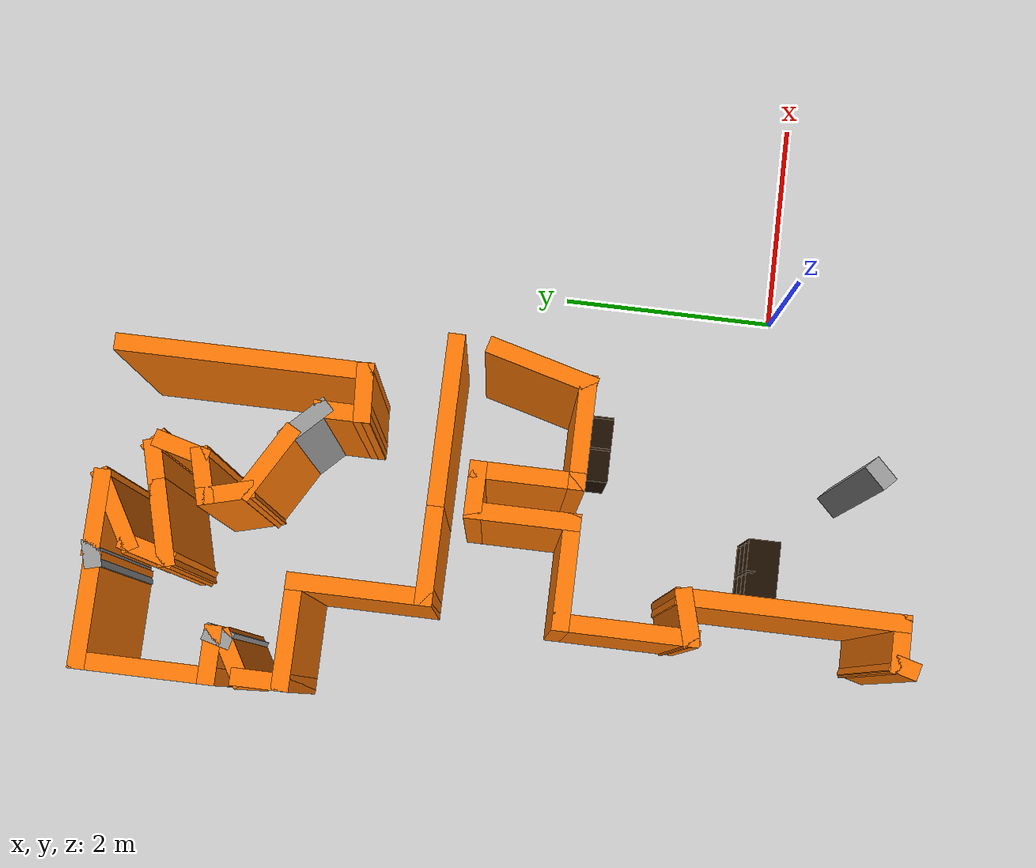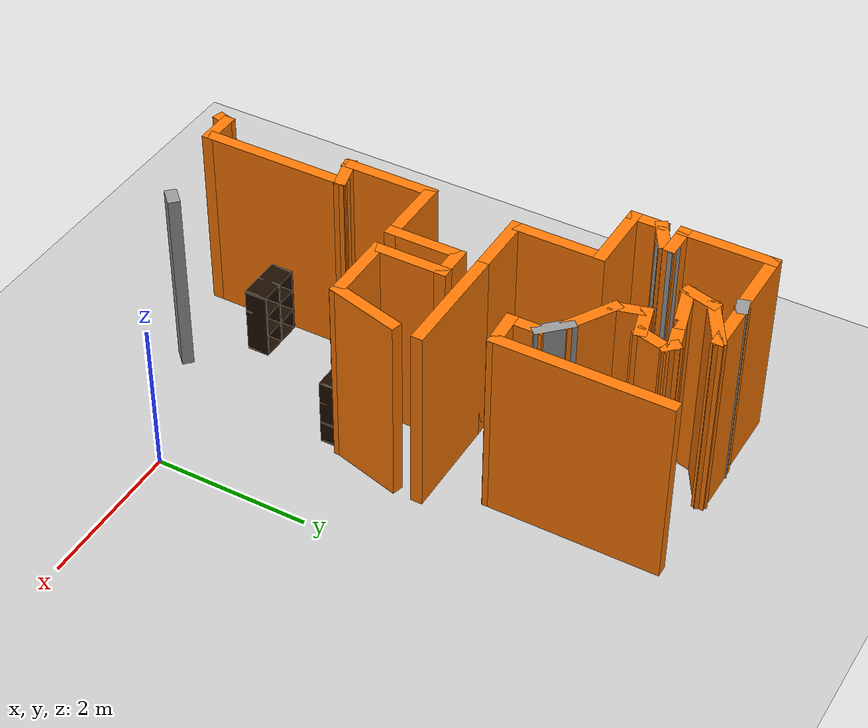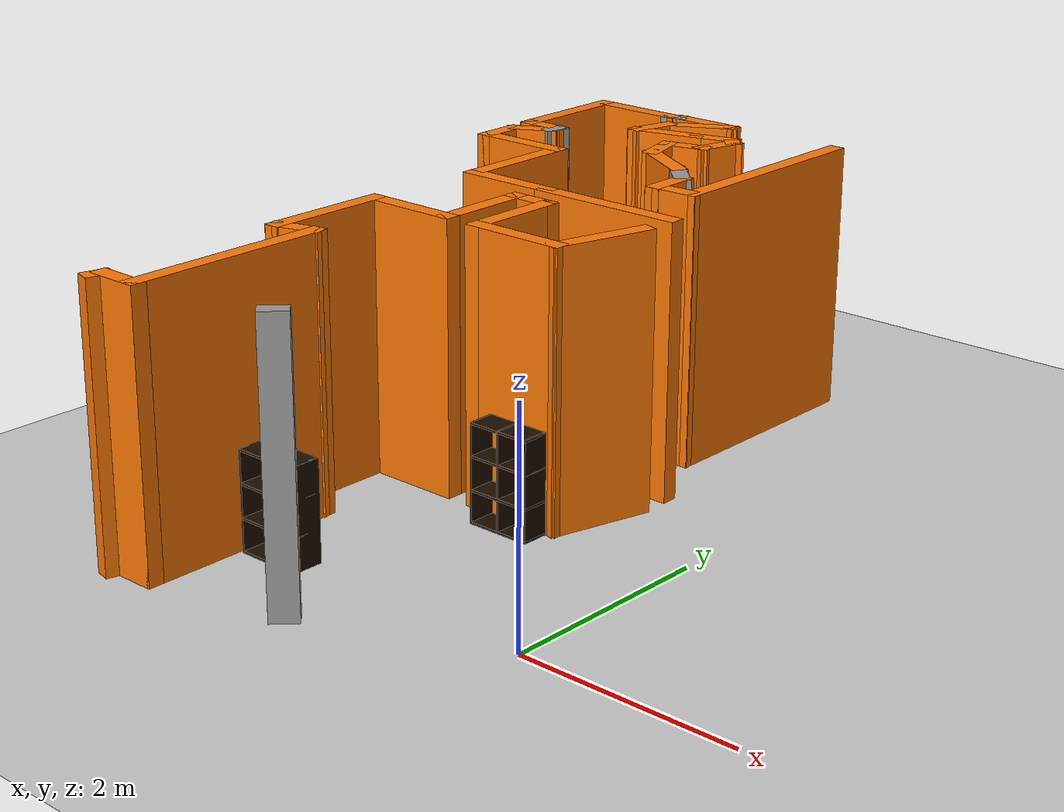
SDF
<sdf version="1.6">
 <world name="default">
  <model name="ground_plane">
   <static>1</static>
   <link name="link">
    <collision name="collision">
     <geometry><plane><normal>0 0 1</normal><size>100 100</size></plane></geometry>
     <surface>
      <contact><collide_bitmask>65535</collide_bitmask></contact>
      <friction><ode><mu>100</mu><mu2>50</mu2></ode></friction>
     </surface>
    </collision>
    <visual name="visual">
     <cast_shadows>0</cast_shadows>
     <geometry><plane><normal>0 0 1</normal><size>100 100</size></plane></geometry>
     <material>
      <script><uri>file://media/materials/scripts/gazebo.material</uri><name>Gazebo/Grey</name></script>
     </material>
    </visual>
   </link>
  </model>
  <model name="map_4">
   <pose>0.04124 -0.27835 0 0 -0 0</pose>
   <link name="Wall_0">
    <collision name="Wall_0_Collision">
     <geometry><box><size>2.25 0.15 2.5</size></box></geometry>
     <pose>0 0 1.25 0 -0 0</pose>
    </collision>
    <visual name="Wall_0_Visual">
     <pose>0 0 1.25 0 -0 0</pose>
     <geometry><box><size>2.25 0.15 2.5</size></box></geometry>
     <material>
      <script><uri>file://media/materials/scripts/gazebo.material</uri><name>Gazebo/Grey</name></script>
      <ambient>0.996078 0.47451 0.0196078 1</ambient>
     </material>
     <meta><layer>0</layer></meta>
    </visual>
    <pose>-1.38482 5.02012 0 0 -0 -1.5708</pose>
   </link>
   <link name="Wall_1">
    <collision name="Wall_1_Collision">
     <geometry><box><size>0.523847 0.15 2.5</size></box></geometry>
     <pose>0 0 1.25 0 -0 0</pose>
    </collision>
    <visual name="Wall_1_Visual">
     <pose>0 0 1.25 0 -0 0</pose>
     <geometry><box><size>0.523847 0.15 2.5</size></box></geometry>
     <material>
      <script><uri>file://media/materials/scripts/gazebo.material</uri><name>Gazebo/Grey</name></script>
      <ambient>0.996078 0.47451 0.0196078 1</ambient>
     </material>
     <meta><layer>0</layer></meta>
    </visual>
    <pose>-1.57139 3.95855 0 0 -0 -3.07968</pose>
   </link>
   <link name="Wall_12">
    <collision name="Wall_12_Collision">
     <geometry><box><size>0.75 0.15 2.5</size></box></geometry>
     <pose>0 0 1.25 0 -0 0</pose>
    </collision>
    <visual name="Wall_12_Visual">
     <pose>0 0 1.25 0 -0 0</pose>
     <geometry><box><size>0.75 0.15 2.5</size></box></geometry>
     <material>
      <script><uri>file://media/materials/scripts/gazebo.material</uri><name>Gazebo/Grey</name></script>
      <ambient>0.996078 0.47451 0.0196078 1</ambient>
     </material>
     <meta><layer>0</layer></meta>
    </visual>
    <pose>-2.88554 5.51369 0 0 -0 -2.87979</pose>
   </link>
   <link name="Wall_13">
    <collision name="Wall_13_Collision">
     <geometry><box><size>0.5 0.15 2.5</size></box></geometry>
     <pose>0 0 1.25 0 -0 0</pose>
    </collision>
    <visual name="Wall_13_Visual">
     <pose>0 0 1.25 0 -0 0</pose>
     <geometry><box><size>0.5 0.15 2.5</size></box></geometry>
     <material>
      <script><uri>file://media/materials/scripts/gazebo.material</uri><name>Gazebo/Grey</name></script>
      <ambient>0.996078 0.47451 0.0196078 1</ambient>
     </material>
     <meta><layer>0</layer></meta>
    </visual>
    <pose>-3.13003 5.60508 0 0 -0 1.309</pose>
   </link>
   <link name="Wall_14">
    <collision name="Wall_14_Collision">
     <geometry><box><size>0.75 0.15 2.5</size></box></geometry>
     <pose>0 0 1.25 0 -0 0</pose>
    </collision>
    <visual name="Wall_14_Visual">
     <pose>0 0 1.25 0 -0 0</pose>
     <geometry><box><size>0.75 0.15 2.5</size></box></geometry>
     <material>
      <script><uri>file://media/materials/scripts/gazebo.material</uri><name>Gazebo/Grey</name></script>
      <ambient>0.996078 0.47451 0.0196078 1</ambient>
     </material>
     <meta><layer>0</layer></meta>
    </visual>
    <pose>-2.82493 5.92412 0 0 -0 0.523599</pose>
   </link>
   <link name="Wall_15">
    <collision name="Wall_15_Collision">
     <geometry><box><size>0.75 0.15 2.5</size></box></geometry>
     <pose>0 0 1.25 0 -0 0</pose>
    </collision>
    <visual name="Wall_15_Visual">
     <pose>0 0 1.25 0 -0 0</pose>
     <geometry><box><size>0.75 0.15 2.5</size></box></geometry>
     <material>
      <script><uri>file://media/materials/scripts/gazebo.material</uri><name>Gazebo/Grey</name></script>
      <ambient>0.996078 0.47451 0.0196078 1</ambient>
     </material>
     <meta><layer>0</layer></meta>
    </visual>
    <pose>-2.86512 6.07412 0 0 -0 3.14159</pose>
   </link>
   <link name="Wall_16">
    <collision name="Wall_16_Collision">
     <geometry><box><size>0.25 0.15 2.5</size></box></geometry>
     <pose>0 0 1.25 0 -0 0</pose>
    </collision>
    <visual name="Wall_16_Visual">
     <pose>0 0 1.25 0 -0 0</pose>
     <geometry><box><size>0.25 0.15 2.5</size></box></geometry>
     <material>
      <script><uri>file://media/materials/scripts/gazebo.material</uri><name>Gazebo/Grey</name></script>
      <ambient>1 1 1 1</ambient>
     </material>
     <meta><layer>0</layer></meta>
    </visual>
    <pose>-3.21341 6.06118 0 0 -0 -2.87979</pose>
   </link>
   <link name="Wall_17">
    <collision name="Wall_17_Collision">
     <geometry><box><size>1 0.15 2.5</size></box></geometry>
     <pose>0 0 1.25 0 -0 0</pose>
    </collision>
    <visual name="Wall_17_Visual">
     <pose>0 0 1.25 0 -0 0</pose>
     <geometry><box><size>1 0.15 2.5</size></box></geometry>
     <material>
      <script><uri>file://media/materials/scripts/gazebo.material</uri><name>Gazebo/Grey</name></script>
      <ambient>0.996078 0.47451 0.0196078 1</ambient>
     </material>
     <meta><layer>0</layer></meta>
    </visual>
    <pose>-3.68671 6.04824 0 0 -0 3.14159</pose>
   </link>
   <link name="Wall_18">
    <collision name="Wall_18_Collision">
     <geometry><box><size>1.25 0.15 2.5</size></box></geometry>
     <pose>0 0 1.25 0 -0 0</pose>
    </collision>
    <visual name="Wall_18_Visual">
     <pose>0 0 1.25 0 -0 0</pose>
     <geometry><box><size>1.25 0.15 2.5</size></box></geometry>
     <material>
      <script><uri>file://media/materials/scripts/gazebo.material</uri><name>Gazebo/Grey</name></script>
      <ambient>0.996078 0.47451 0.0196078 1</ambient>
     </material>
     <meta><layer>0</layer></meta>
    </visual>
    <pose>-4.11171 5.49824 0 0 -0 -1.5708</pose>
   </link>
   <link name="Wall_182">
    <collision name="Wall_182_Collision">
     <geometry><box><size>0.25 0.15 2.5</size></box></geometry>
     <pose>0 0 1.25 0 -0 0</pose>
    </collision>
    <visual name="Wall_182_Visual">
     <pose>0 0 1.25 0 -0 0</pose>
     <geometry><box><size>0.25 0.15 2.5</size></box></geometry>
     <material>
      <script><uri>file://media/materials/scripts/gazebo.material</uri><name>Gazebo/Grey</name></script>
      <ambient>1 1 1 1</ambient>
     </material>
     <meta><layer>0</layer></meta>
    </visual>
    <pose>-1.73175 -0.506693 0 0 -0 -2.35619</pose>
   </link>
   <link name="Wall_19">
    <collision name="Wall_19_Collision">
     <geometry><box><size>0.5 0.15 2.5</size></box></geometry>
     <pose>0 0 1.25 0 -0 0</pose>
    </collision>
    <visual name="Wall_19_Visual">
     <pose>0 0 1.25 0 -0 0</pose>
     <geometry><box><size>0.5 0.15 2.5</size></box></geometry>
     <material>
      <script><uri>file://media/materials/scripts/gazebo.material</uri><name>Gazebo/Grey</name></script>
      <ambient>0.996078 0.47451 0.0196078 1</ambient>
     </material>
     <meta><layer>0</layer></meta>
    </visual>
    <pose>-3.93671 4.94824 0 0 -0 0</pose>
   </link>
   <link name="Wall_2">
    <collision name="Wall_2_Collision">
     <geometry><box><size>0.5 0.15 2.5</size></box></geometry>
     <pose>0 0 1.25 0 -0 0</pose>
    </collision>
    <visual name="Wall_2_Visual">
     <pose>0 0 1.25 0 -0 0</pose>
     <geometry><box><size>0.5 0.15 2.5</size></box></geometry>
     <material>
      <script><uri>file://media/materials/scripts/gazebo.material</uri><name>Gazebo/Grey</name></script>
      <ambient>0.996078 0.47451 0.0196078 1</ambient>
     </material>
     <meta><layer>0</layer></meta>
    </visual>
    <pose>-1.75795 4.12199 0 0 -0 1.5708</pose>
   </link>
   <link name="Wall_20">
    <collision name="Wall_20_Collision">
     <geometry><box><size>0.25 0.15 2.5</size></box></geometry>
     <pose>0 0 1.25 0 -0 0</pose>
    </collision>
    <visual name="Wall_20_Visual">
     <pose>0 0 1.25 0 -0 0</pose>
     <geometry><box><size>0.25 0.15 2.5</size></box></geometry>
     <material>
      <script><uri>file://media/materials/scripts/gazebo.material</uri><name>Gazebo/Grey</name></script>
      <ambient>1 1 1 1</ambient>
     </material>
     <meta><layer>0</layer></meta>
    </visual>
    <pose>-3.77465 4.89994 0 0 -0 -1.8326</pose>
   </link>
   <link name="Wall_21">
    <collision name="Wall_21_Collision">
     <geometry><box><size>0.5 0.15 2.5</size></box></geometry>
     <pose>0 0 1.25 0 -0 0</pose>
    </collision>
    <visual name="Wall_21_Visual">
     <pose>0 0 1.25 0 -0 0</pose>
     <geometry><box><size>0.5 0.15 2.5</size></box></geometry>
     <material>
      <script><uri>file://media/materials/scripts/gazebo.material</uri><name>Gazebo/Grey</name></script>
      <ambient>0.996078 0.47451 0.0196078 1</ambient>
     </material>
     <meta><layer>0</layer></meta>
    </visual>
    <pose>-3.93915 4.76414 0 0 -0 -2.61799</pose>
   </link>
   <link name="Wall_22">
    <collision name="Wall_22_Collision">
     <geometry><box><size>0.5 0.15 2.5</size></box></geometry>
     <pose>0 0 1.25 0 -0 0</pose>
    </collision>
    <visual name="Wall_22_Visual">
     <pose>0 0 1.25 0 -0 0</pose>
     <geometry><box><size>0.5 0.15 2.5</size></box></geometry>
     <material>
      <script><uri>file://media/materials/scripts/gazebo.material</uri><name>Gazebo/Grey</name></script>
      <ambient>0.996078 0.47451 0.0196078 1</ambient>
     </material>
     <meta><layer>0</layer></meta>
    </visual>
    <pose>-4.0907 4.50164 0 0 -0 -1.5708</pose>
   </link>
   <link name="Wall_25">
    <collision name="Wall_25_Collision">
     <geometry><box><size>1 0.15 2.5</size></box></geometry>
     <pose>0 0 1.25 0 -0 0</pose>
    </collision>
    <visual name="Wall_25_Visual">
     <pose>0 0 1.25 0 -0 0</pose>
     <geometry><box><size>1 0.15 2.5</size></box></geometry>
     <material>
      <script><uri>file://media/materials/scripts/gazebo.material</uri><name>Gazebo/Grey</name></script>
      <ambient>0.996078 0.47451 0.0196078 1</ambient>
     </material>
     <meta><layer>0</layer></meta>
    </visual>
    <pose>-3.6657 4.32664 0 0 -0 0</pose>
   </link>
   <link name="Wall_26">
    <collision name="Wall_26_Collision">
     <geometry><box><size>1.25 0.15 2.5</size></box></geometry>
     <pose>0 0 1.25 0 -0 0</pose>
    </collision>
    <visual name="Wall_26_Visual">
     <pose>0 0 1.25 0 -0 0</pose>
     <geometry><box><size>1.25 0.15 2.5</size></box></geometry>
     <material>
      <script><uri>file://media/materials/scripts/gazebo.material</uri><name>Gazebo/Grey</name></script>
      <ambient>0.996078 0.47451 0.0196078 1</ambient>
     </material>
     <meta><layer>0</layer></meta>
    </visual>
    <pose>-3.2407 3.77664 0 0 -0 -1.5708</pose>
   </link>
   <link name="Wall_3">
    <collision name="Wall_3_Collision">
     <geometry><box><size>0.5 0.15 2.5</size></box></geometry>
     <pose>0 0 1.25 0 -0 0</pose>
    </collision>
    <visual name="Wall_3_Visual">
     <pose>0 0 1.25 0 -0 0</pose>
     <geometry><box><size>0.5 0.15 2.5</size></box></geometry>
     <material>
      <script><uri>file://media/materials/scripts/gazebo.material</uri><name>Gazebo/Grey</name></script>
      <ambient>1 1 1 1</ambient>
     </material>
     <meta><layer>0</layer></meta>
    </visual>
    <pose>-1.88169 4.42073 0 0 -0 2.35619</pose>
   </link>
   <link name="Wall_30">
    <collision name="Wall_30_Collision">
     <geometry><box><size>1 0.15 2.5</size></box></geometry>
     <pose>0 0 1.25 0 -0 0</pose>
    </collision>
    <visual name="Wall_30_Visual">
     <pose>0 0 1.25 0 -0 0</pose>
     <geometry><box><size>1 0.15 2.5</size></box></geometry>
     <material>
      <script><uri>file://media/materials/scripts/gazebo.material</uri><name>Gazebo/Grey</name></script>
      <ambient>0.996078 0.47451 0.0196078 1</ambient>
     </material>
     <meta><layer>0</layer></meta>
    </visual>
    <pose>-2.8157 3.22664 0 0 -0 0</pose>
   </link>
   <link name="Wall_31">
    <collision name="Wall_31_Collision">
     <geometry><box><size>1.5 0.15 2.5</size></box></geometry>
     <pose>0 0 1.25 0 -0 0</pose>
    </collision>
    <visual name="Wall_31_Visual">
     <pose>0 0 1.25 0 -0 0</pose>
     <geometry><box><size>1.5 0.15 2.5</size></box></geometry>
     <material>
      <script><uri>file://media/materials/scripts/gazebo.material</uri><name>Gazebo/Grey</name></script>
      <ambient>0.996078 0.47451 0.0196078 1</ambient>
     </material>
     <meta><layer>0</layer></meta>
    </visual>
    <pose>-1.7157 3.22664 0 0 -0 0</pose>
   </link>
   <link name="Wall_33">
    <collision name="Wall_33_Collision">
     <geometry><box><size>1 0.15 2.5</size></box></geometry>
     <pose>0 0 1.25 0 -0 0</pose>
    </collision>
    <visual name="Wall_33_Visual">
     <pose>0 0 1.25 0 -0 0</pose>
     <geometry><box><size>1 0.15 2.5</size></box></geometry>
     <material>
      <script><uri>file://media/materials/scripts/gazebo.material</uri><name>Gazebo/Grey</name></script>
      <ambient>0.996078 0.47451 0.0196078 1</ambient>
     </material>
     <meta><layer>0</layer></meta>
    </visual>
    <pose>-1.1507 2.46612 0 0 -0 -1.8326</pose>
   </link>
   <link name="Wall_34">
    <collision name="Wall_34_Collision">
     <geometry><box><size>1 0.15 2.5</size></box></geometry>
     <pose>0 0 1.25 0 -0 0</pose>
    </collision>
    <visual name="Wall_34_Visual">
     <pose>0 0 1.25 0 -0 0</pose>
     <geometry><box><size>1 0.15 2.5</size></box></geometry>
     <material>
      <script><uri>file://media/materials/scripts/gazebo.material</uri><name>Gazebo/Grey</name></script>
      <ambient>0.996078 0.47451 0.0196078 1</ambient>
     </material>
     <meta><layer>0</layer></meta>
    </visual>
    <pose>-1.6857 2.05561 0 0 -0 3.14159</pose>
   </link>
   <link name="Wall_35">
    <collision name="Wall_35_Collision">
     <geometry><box><size>1 0.15 2.5</size></box></geometry>
     <pose>0 0 1.25 0 -0 0</pose>
    </collision>
    <visual name="Wall_35_Visual">
     <pose>0 0 1.25 0 -0 0</pose>
     <geometry><box><size>1 0.15 2.5</size></box></geometry>
     <material>
      <script><uri>file://media/materials/scripts/gazebo.material</uri><name>Gazebo/Grey</name></script>
      <ambient>0.996078 0.47451 0.0196078 1</ambient>
     </material>
     <meta><layer>0</layer></meta>
    </visual>
    <pose>-2.1107 2.48061 0 0 -0 1.5708</pose>
   </link>
   <link name="Wall_36">
    <collision name="Wall_36_Collision">
     <geometry><box><size>0.5 0.15 2.5</size></box></geometry>
     <pose>0 0 1.25 0 -0 0</pose>
    </collision>
    <visual name="Wall_36_Visual">
     <pose>0 0 1.25 0 -0 0</pose>
     <geometry><box><size>0.5 0.15 2.5</size></box></geometry>
     <material>
      <script><uri>file://media/materials/scripts/gazebo.material</uri><name>Gazebo/Grey</name></script>
      <ambient>0.996078 0.47451 0.0196078 1</ambient>
     </material>
     <meta><layer>0</layer></meta>
    </visual>
    <pose>-2.2857 2.90561 0 0 -0 3.14159</pose>
   </link>
   <link name="Wall_37">
    <collision name="Wall_37_Collision">
     <geometry><box><size>1 0.15 2.5</size></box></geometry>
     <pose>0 0 1.25 0 -0 0</pose>
    </collision>
    <visual name="Wall_37_Visual">
     <pose>0 0 1.25 0 -0 0</pose>
     <geometry><box><size>1 0.15 2.5</size></box></geometry>
     <material>
      <script><uri>file://media/materials/scripts/gazebo.material</uri><name>Gazebo/Grey</name></script>
      <ambient>0.996078 0.47451 0.0196078 1</ambient>
     </material>
     <meta><layer>0</layer></meta>
    </visual>
    <pose>-2.4607 2.48061 0 0 -0 -1.5708</pose>
   </link>
   <link name="Wall_38">
    <collision name="Wall_38_Collision">
     <geometry><box><size>1 0.15 2.5</size></box></geometry>
     <pose>0 0 1.25 0 -0 0</pose>
    </collision>
    <visual name="Wall_38_Visual">
     <pose>0 0 1.25 0 -0 0</pose>
     <geometry><box><size>1 0.15 2.5</size></box></geometry>
     <material>
      <script><uri>file://media/materials/scripts/gazebo.material</uri><name>Gazebo/Grey</name></script>
      <ambient>0.996078 0.47451 0.0196078 1</ambient>
     </material>
     <meta><layer>0</layer></meta>
    </visual>
    <pose>-2.8857 2.05561 0 0 -0 3.14159</pose>
   </link>
   <link name="Wall_4">
    <collision name="Wall_4_Collision">
     <geometry><box><size>0.75 0.15 2.5</size></box></geometry>
     <pose>0 0 1.25 0 -0 0</pose>
    </collision>
    <visual name="Wall_4_Visual">
     <pose>0 0 1.25 0 -0 0</pose>
     <geometry><box><size>0.75 0.15 2.5</size></box></geometry>
     <material>
      <script><uri>file://media/materials/scripts/gazebo.material</uri><name>Gazebo/Grey</name></script>
      <ambient>0.996078 0.47451 0.0196078 1</ambient>
     </material>
     <meta><layer>0</layer></meta>
    </visual>
    <pose>-2.26525 4.69448 0 0 -0 2.61799</pose>
   </link>
   <link name="Wall_43">
    <collision name="Wall_43_Collision">
     <geometry><box><size>1.25 0.15 2.5</size></box></geometry>
     <pose>0 0 1.25 0 -0 0</pose>
    </collision>
    <visual name="Wall_43_Visual">
     <pose>0 0 1.25 0 -0 0</pose>
     <geometry><box><size>1.25 0.15 2.5</size></box></geometry>
     <material>
      <script><uri>file://media/materials/scripts/gazebo.material</uri><name>Gazebo/Grey</name></script>
      <ambient>0.996078 0.47451 0.0196078 1</ambient>
     </material>
     <meta><layer>0</layer></meta>
    </visual>
    <pose>-3.3107 1.50561 0 0 -0 -1.5708</pose>
   </link>
   <link name="Wall_44">
    <collision name="Wall_44_Collision">
     <geometry><box><size>0.5 0.15 2.5</size></box></geometry>
     <pose>0 0 1.25 0 -0 0</pose>
    </collision>
    <visual name="Wall_44_Visual">
     <pose>0 0 1.25 0 -0 0</pose>
     <geometry><box><size>0.5 0.15 2.5</size></box></geometry>
     <material>
      <script><uri>file://media/materials/scripts/gazebo.material</uri><name>Gazebo/Grey</name></script>
      <ambient>0.996078 0.47451 0.0196078 1</ambient>
     </material>
     <meta><layer>0</layer></meta>
    </visual>
    <pose>-3.14166 1.0009 0 0 -0 0.261799</pose>
   </link>
   <link name="Wall_46">
    <collision name="Wall_46_Collision">
     <geometry><box><size>2 0.15 2.5</size></box></geometry>
     <pose>0 0 1.25 0 -0 0</pose>
    </collision>
    <visual name="Wall_46_Visual">
     <pose>0 0 1.25 0 -0 0</pose>
     <geometry><box><size>2 0.15 2.5</size></box></geometry>
     <material>
      <script><uri>file://media/materials/scripts/gazebo.material</uri><name>Gazebo/Grey</name></script>
      <ambient>0.996078 0.47451 0.0196078 1</ambient>
     </material>
     <meta><layer>0</layer></meta>
    </visual>
    <pose>-2.97262 0.121192 0 0 -0 -1.5708</pose>
   </link>
   <link name="Wall_47">
    <collision name="Wall_47_Collision">
     <geometry><box><size>0.5 0.15 2.5</size></box></geometry>
     <pose>0 0 1.25 0 -0 0</pose>
    </collision>
    <visual name="Wall_47_Visual">
     <pose>0 0 1.25 0 -0 0</pose>
     <geometry><box><size>0.5 0.15 2.5</size></box></geometry>
     <material>
      <script><uri>file://media/materials/scripts/gazebo.material</uri><name>Gazebo/Grey</name></script>
      <ambient>0.996078 0.47451 0.0196078 1</ambient>
     </material>
     <meta><layer>0</layer></meta>
    </visual>
    <pose>-3.14762 -0.803808 0 0 -0 3.14159</pose>
   </link>
   <link name="Wall_48">
    <collision name="Wall_48_Collision">
     <geometry><box><size>0.25 0.15 2.5</size></box></geometry>
     <pose>0 0 1.25 0 -0 0</pose>
    </collision>
    <visual name="Wall_48_Visual">
     <pose>0 0 1.25 0 -0 0</pose>
     <geometry><box><size>0.25 0.15 2.5</size></box></geometry>
     <material>
      <script><uri>file://media/materials/scripts/gazebo.material</uri><name>Gazebo/Grey</name></script>
      <ambient>0.996078 0.47451 0.0196078 1</ambient>
     </material>
     <meta><layer>0</layer></meta>
    </visual>
    <pose>-3.33556 -0.852104 0 0 -0 -1.8326</pose>
   </link>
   <link name="Wall_5">
    <collision name="Wall_5_Collision">
     <geometry><box><size>0.5 0.15 2.5</size></box></geometry>
     <pose>0 0 1.25 0 -0 0</pose>
    </collision>
    <visual name="Wall_5_Visual">
     <pose>0 0 1.25 0 -0 0</pose>
     <geometry><box><size>0.5 0.15 2.5</size></box></geometry>
     <material>
      <script><uri>file://media/materials/scripts/gazebo.material</uri><name>Gazebo/Grey</name></script>
      <ambient>0.996078 0.47451 0.0196078 1</ambient>
     </material>
     <meta><layer>0</layer></meta>
    </visual>
    <pose>-2.57035 5.01351 0 0 -0 1.8326</pose>
   </link>
   <link name="Wall_6">
    <collision name="Wall_6_Collision">
     <geometry><box><size>0.5 0.15 2.5</size></box></geometry>
     <pose>0 0 1.25 0 -0 0</pose>
    </collision>
    <visual name="Wall_6_Visual">
     <pose>0 0 1.25 0 -0 0</pose>
     <geometry><box><size>0.5 0.15 2.5</size></box></geometry>
     <material>
      <script><uri>file://media/materials/scripts/gazebo.material</uri><name>Gazebo/Grey</name></script>
      <ambient>0.996078 0.47451 0.0196078 1</ambient>
     </material>
     <meta><layer>0</layer></meta>
    </visual>
    <pose>-2.4466 5.22784 0 0 -0 0.261799</pose>
   </link>
   <link name="Wall_7">
    <collision name="Wall_7_Collision">
     <geometry><box><size>0.5 0.15 2.5</size></box></geometry>
     <pose>0 0 1.25 0 -0 0</pose>
    </collision>
    <visual name="Wall_7_Visual">
     <pose>0 0 1.25 0 -0 0</pose>
     <geometry><box><size>0.5 0.15 2.5</size></box></geometry>
     <material>
      <script><uri>file://media/materials/scripts/gazebo.material</uri><name>Gazebo/Grey</name></script>
      <ambient>0.996078 0.47451 0.0196078 1</ambient>
     </material>
     <meta><layer>0</layer></meta>
    </visual>
    <pose>-2.23227 5.44217 0 0 -0 1.309</pose>
   </link>
   <link name="Wall_8">
    <collision name="Wall_8_Collision">
     <geometry><box><size>0.25 0.15 2.5</size></box></geometry>
     <pose>0 0 1.25 0 -0 0</pose>
    </collision>
    <visual name="Wall_8_Visual">
     <pose>0 0 1.25 0 -0 0</pose>
     <geometry><box><size>0.25 0.15 2.5</size></box></geometry>
     <material>
      <script><uri>file://media/materials/scripts/gazebo.material</uri><name>Gazebo/Grey</name></script>
      <ambient>0.996078 0.47451 0.0196078 1</ambient>
     </material>
     <meta><layer>0</layer></meta>
    </visual>
    <pose>-2.22234 5.64657 0 0 -0 2.35619</pose>
   </link>
   <link name="Wall_9">
    <collision name="Wall_9_Collision">
     <geometry><box><size>0.5 0.15 2.5</size></box></geometry>
     <pose>0 0 1.25 0 -0 0</pose>
    </collision>
    <visual name="Wall_9_Visual">
     <pose>0 0 1.25 0 -0 0</pose>
     <geometry><box><size>0.5 0.15 2.5</size></box></geometry>
     <material>
      <script><uri>file://media/materials/scripts/gazebo.material</uri><name>Gazebo/Grey</name></script>
      <ambient>0.996078 0.47451 0.0196078 1</ambient>
     </material>
     <meta><layer>0</layer></meta>
    </visual>
    <pose>-2.42673 5.63663 0 0 -0 -2.87979</pose>
   </link>
   <static>1</static>
  </model>
  <model name="6方格书柜">
   <link name="Wall_0">
    <pose>0 0 0.01 0 -0 0</pose>
    <inertial>
     <mass>1.6201</mass>
     <inertia><ixx>0.0119</ixx><iyy>0.0631</iyy><izz>0.0513</izz><ixy>0</ixy><ixz>0</ixz><iyz>0</iyz></inertia>
    </inertial>
    <collision name="Wall_0_Collision"><geometry><box><size>0.616 0.296 0.02</size></box></geometry></collision>
    <visual name="Wall_0_Visual">
     <geometry><box><size>0.616 0.296 0.02</size></box></geometry>
     <material>
      <script><uri>file://media/materials/scripts/gazebo.material</uri><name>Gazebo/Grey</name></script>
      <ambient>0.105882 0.0509804 0 1</ambient>
     </material>
    </visual>
   </link>
   <joint name="0_2" type="fixed">
    <pose>-0.308 0 0 0 -0 0</pose>
    <parent>Wall_2</parent>
    <child>Wall_0</child>
    <axis>
     <xyz>1 0 0</xyz>
     <use_parent_model_frame>0</use_parent_model_frame>
     <limit><lower>-1e+16</lower><upper>1e+16</upper></limit>
    </axis>
   </joint>
   <joint name="0_12" type="fixed">
    <parent>Wall_12</parent>
    <child>Wall_0</child>
    <axis>
     <xyz>0 0 1</xyz>
     <use_parent_model_frame>0</use_parent_model_frame>
     <limit><lower>-1e+16</lower><upper>1e+16</upper></limit>
    </axis>
   </joint>
   <joint name="0_4" type="fixed">
    <pose>0.308 0 0 0 -0 0</pose>
    <parent>Wall_4</parent>
    <child>Wall_0</child>
    <axis>
     <xyz>1 0 0</xyz>
     <use_parent_model_frame>0</use_parent_model_frame>
     <limit><lower>-1e+16</lower><upper>1e+16</upper></limit>
    </axis>
   </joint>
   <link name="Wall_10">
    <pose>0 0 0.61 0 -0 0</pose>
    <inertial>
     <mass>1.6201</mass>
     <inertia><ixx>0.0119</ixx><iyy>0.0631</iyy><izz>0.0513</izz><ixy>0</ixy><ixz>0</ixz><iyz>0</iyz></inertia>
    </inertial>
    <collision name="Wall_10_Collision"><geometry><box><size>0.616 0.296 0.02</size></box></geometry></collision>
    <visual name="Wall_10_Visual">
     <geometry><box><size>0.616 0.296 0.02</size></box></geometry>
     <material>
      <script><uri>file://media/materials/scripts/gazebo.material</uri><name>Gazebo/Grey</name></script>
      <ambient>0.105882 0.0509804 0 1</ambient>
     </material>
    </visual>
   </link>
   <joint name="10_2" type="fixed">
    <pose>-0.308 0 0 0 -0 0</pose>
    <parent>Wall_2</parent>
    <child>Wall_10</child>
    <axis>
     <xyz>1 0 0</xyz>
     <use_parent_model_frame>0</use_parent_model_frame>
     <limit><lower>-1e+16</lower><upper>1e+16</upper></limit>
    </axis>
   </joint>
   <joint name="10_12" type="fixed">
    <parent>Wall_12</parent>
    <child>Wall_10</child>
    <axis>
     <xyz>0 0 1</xyz>
     <use_parent_model_frame>0</use_parent_model_frame>
     <limit><lower>-1e+16</lower><upper>1e+16</upper></limit>
    </axis>
   </joint>
   <joint name="10_4" type="fixed">
    <pose>0.308 0 0 0 -0 0</pose>
    <parent>Wall_4</parent>
    <child>Wall_10</child>
    <axis>
     <xyz>1 0 0</xyz>
     <use_parent_model_frame>0</use_parent_model_frame>
     <limit><lower>-1e+16</lower><upper>1e+16</upper></limit>
    </axis>
   </joint>
   <link name="Wall_12">
    <pose>0 0 0.4575 0 -0 0</pose>
    <inertial>
     <mass>2.4065</mass>
     <inertia><ixx>0.0177</ixx><iyy>0.1855</iyy><izz>0.168</izz><ixy>0</ixy><ixz>0</ixz><iyz>0</iyz></inertia>
    </inertial>
    <collision name="Wall_12_Collision"><geometry><box><size>0.02 0.296 0.915</size></box></geometry></collision>
    <visual name="Wall_12_Visual">
     <geometry><box><size>0.02 0.296 0.915</size></box></geometry>
     <material>
      <script><uri>file://media/materials/scripts/gazebo.material</uri><name>Gazebo/Grey</name></script>
      <ambient>0.105882 0.0509804 0 1</ambient>
     </material>
    </visual>
   </link>
   <link name="Wall_2">
    <pose>-0.298 0 0.4575 0 -0 0</pose>
    <inertial>
     <mass>2.4065</mass>
     <inertia><ixx>0.0177</ixx><iyy>0.1855</iyy><izz>0.168</izz><ixy>0</ixy><ixz>0</ixz><iyz>0</iyz></inertia>
    </inertial>
    <collision name="Wall_2_Collision"><geometry><box><size>0.02 0.296 0.915</size></box></geometry></collision>
    <visual name="Wall_2_Visual">
     <geometry><box><size>0.02 0.296 0.915</size></box></geometry>
     <material>
      <script><uri>file://media/materials/scripts/gazebo.material</uri><name>Gazebo/Grey</name></script>
      <ambient>0.105882 0.0509804 0 1</ambient>
     </material>
    </visual>
   </link>
   <link name="Wall_4">
    <pose>0.298 0 0.4575 0 -0 0</pose>
    <inertial>
     <mass>2.4065</mass>
     <inertia><ixx>0.0177</ixx><iyy>0.1855</iyy><izz>0.168</izz><ixy>0</ixy><ixz>0</ixz><iyz>0</iyz></inertia>
    </inertial>
    <collision name="Wall_4_Collision"><geometry><box><size>0.02 0.296 0.915</size></box></geometry></collision>
    <visual name="Wall_4_Visual">
     <geometry><box><size>0.02 0.296 0.915</size></box></geometry>
     <material>
      <script><uri>file://media/materials/scripts/gazebo.material</uri><name>Gazebo/Grey</name></script>
      <ambient>0.105882 0.0509804 0 1</ambient>
     </material>
    </visual>
   </link>
   <link name="Wall_6">
    <pose>0 0 0.905 0 -0 0</pose>
    <inertial>
     <mass>1.6201</mass>
     <inertia><ixx>0.0119</ixx><iyy>0.0631</iyy><izz>0.0513</izz><ixy>0</ixy><ixz>0</ixz><iyz>0</iyz></inertia>
    </inertial>
    <collision name="Wall_6_Collision"><geometry><box><size>0.616 0.296 0.02</size></box></geometry></collision>
    <visual name="Wall_6_Visual">
     <geometry><box><size>0.616 0.296 0.02</size></box></geometry>
     <material>
      <script><uri>file://media/materials/scripts/gazebo.material</uri><name>Gazebo/Grey</name></script>
      <ambient>0.105882 0.0509804 0 1</ambient>
     </material>
    </visual>
   </link>
   <joint name="6_2" type="fixed">
    <pose>-0.308 0 0 0 -0 0</pose>
    <parent>Wall_2</parent>
    <child>Wall_6</child>
    <axis>
     <xyz>2 0 0</xyz>
     <use_parent_model_frame>0</use_parent_model_frame>
     <limit><lower>-1e+16</lower><upper>1e+16</upper></limit>
    </axis>
   </joint>
   <joint name="6_12" type="fixed">
    <parent>Wall_12</parent>
    <child>Wall_6</child>
    <axis>
     <xyz>0 0 1</xyz>
     <use_parent_model_frame>0</use_parent_model_frame>
     <limit><lower>-1e+16</lower><upper>1e+16</upper></limit>
    </axis>
   </joint>
   <joint name="6_4" type="fixed">
    <pose>0.308 0 0 0 -0 0</pose>
    <parent>Wall_4</parent>
    <child>Wall_6</child>
    <axis>
     <xyz>1 0 0</xyz>
     <use_parent_model_frame>0</use_parent_model_frame>
     <limit><lower>-1e+16</lower><upper>1e+16</upper></limit>
    </axis>
   </joint>
   <link name="Wall_8">
    <pose>0 0 0.305 0 -0 0</pose>
    <inertial>
     <mass>1.6201</mass>
     <inertia><ixx>0.0119</ixx><iyy>0.0631</iyy><izz>0.0513</izz><ixy>0</ixy><ixz>0</ixz><iyz>0</iyz></inertia>
    </inertial>
    <collision name="Wall_8_Collision"><geometry><box><size>0.616 0.296 0.02</size></box></geometry></collision>
    <visual name="Wall_8_Visual">
     <geometry><box><size>0.616 0.296 0.02</size></box></geometry>
     <material>
      <script><uri>file://media/materials/scripts/gazebo.material</uri><name>Gazebo/Grey</name></script>
      <ambient>0.105882 0.0509804 0 1</ambient>
     </material>
    </visual>
   </link>
   <joint name="8_2" type="fixed">
    <pose>-0.308 0 0 0 -0 0</pose>
    <parent>Wall_2</parent>
    <child>Wall_8</child>
    <axis>
     <xyz>1 0 0</xyz>
     <use_parent_model_frame>0</use_parent_model_frame>
     <limit><lower>-1e+16</lower><upper>1e+16</upper></limit>
    </axis>
   </joint>
   <joint name="8_12" type="fixed">
    <parent>Wall_12</parent>
    <child>Wall_8</child>
    <axis>
     <xyz>0 0 1</xyz>
     <use_parent_model_frame>0</use_parent_model_frame>
     <limit><lower>-1e+16</lower><upper>1e+16</upper></limit>
    </axis>
   </joint>
   <joint name="8_4" type="fixed">
    <pose>0.308 0 0 0 -0 0</pose>
    <parent>Wall_4</parent>
    <child>Wall_8</child>
    <axis>
     <xyz>1 0 0</xyz>
     <use_parent_model_frame>0</use_parent_model_frame>
     <limit><lower>-1e+16</lower><upper>1e+16</upper></limit>
    </axis>
   </joint>
   <static>1</static>
   <pose>-2.52502 -0.063639 0 0 -0 0</pose>
  </model>
  <model name="6方格书柜_0">
   <link name="Wall_0">
    <pose>0 0 0.01 0 -0 0</pose>
    <inertial>
     <mass>1.6201</mass>
     <inertia><ixx>0.0119</ixx><iyy>0.0631</iyy><izz>0.0513</izz><ixy>0</ixy><ixz>0</ixz><iyz>0</iyz></inertia>
    </inertial>
    <collision name="Wall_0_Collision"><geometry><box><size>0.616 0.296 0.02</size></box></geometry></collision>
    <visual name="Wall_0_Visual">
     <geometry><box><size>0.616 0.296 0.02</size></box></geometry>
     <material>
      <script><uri>file://media/materials/scripts/gazebo.material</uri><name>Gazebo/Grey</name></script>
      <ambient>0.105882 0.0509804 0 1</ambient>
     </material>
    </visual>
   </link>
   <joint name="0_2" type="fixed">
    <pose>-0.308 0 0 0 -0 0</pose>
    <parent>Wall_2</parent>
    <child>Wall_0</child>
    <axis>
     <xyz>1 0 0</xyz>
     <use_parent_model_frame>0</use_parent_model_frame>
     <limit><lower>-1e+16</lower><upper>1e+16</upper></limit>
    </axis>
   </joint>
   <joint name="0_12" type="fixed">
    <parent>Wall_12</parent>
    <child>Wall_0</child>
    <axis>
     <xyz>0 0 1</xyz>
     <use_parent_model_frame>0</use_parent_model_frame>
     <limit><lower>-1e+16</lower><upper>1e+16</upper></limit>
    </axis>
   </joint>
   <joint name="0_4" type="fixed">
    <pose>0.308 0 0 0 -0 0</pose>
    <parent>Wall_4</parent>
    <child>Wall_0</child>
    <axis>
     <xyz>1 0 0</xyz>
     <use_parent_model_frame>0</use_parent_model_frame>
     <limit><lower>-1e+16</lower><upper>1e+16</upper></limit>
    </axis>
   </joint>
   <link name="Wall_10">
    <pose>0 0 0.61 0 -0 0</pose>
    <inertial>
     <mass>1.6201</mass>
     <inertia><ixx>0.0119</ixx><iyy>0.0631</iyy><izz>0.0513</izz><ixy>0</ixy><ixz>0</ixz><iyz>0</iyz></inertia>
    </inertial>
    <collision name="Wall_10_Collision"><geometry><box><size>0.616 0.296 0.02</size></box></geometry></collision>
    <visual name="Wall_10_Visual">
     <geometry><box><size>0.616 0.296 0.02</size></box></geometry>
     <material>
      <script><uri>file://media/materials/scripts/gazebo.material</uri><name>Gazebo/Grey</name></script>
      <ambient>0.105882 0.0509804 0 1</ambient>
     </material>
    </visual>
   </link>
   <joint name="10_2" type="fixed">
    <pose>-0.308 0 0 0 -0 0</pose>
    <parent>Wall_2</parent>
    <child>Wall_10</child>
    <axis>
     <xyz>1 0 0</xyz>
     <use_parent_model_frame>0</use_parent_model_frame>
     <limit><lower>-1e+16</lower><upper>1e+16</upper></limit>
    </axis>
   </joint>
   <joint name="10_12" type="fixed">
    <parent>Wall_12</parent>
    <child>Wall_10</child>
    <axis>
     <xyz>0 0 1</xyz>
     <use_parent_model_frame>0</use_parent_model_frame>
     <limit><lower>-1e+16</lower><upper>1e+16</upper></limit>
    </axis>
   </joint>
   <joint name="10_4" type="fixed">
    <pose>0.308 0 0 0 -0 0</pose>
    <parent>Wall_4</parent>
    <child>Wall_10</child>
    <axis>
     <xyz>1 0 0</xyz>
     <use_parent_model_frame>0</use_parent_model_frame>
     <limit><lower>-1e+16</lower><upper>1e+16</upper></limit>
    </axis>
   </joint>
   <link name="Wall_12">
    <pose>0 0 0.4575 0 -0 0</pose>
    <inertial>
     <mass>2.4065</mass>
     <inertia><ixx>0.0177</ixx><iyy>0.1855</iyy><izz>0.168</izz><ixy>0</ixy><ixz>0</ixz><iyz>0</iyz></inertia>
    </inertial>
    <collision name="Wall_12_Collision"><geometry><box><size>0.02 0.296 0.915</size></box></geometry></collision>
    <visual name="Wall_12_Visual">
     <geometry><box><size>0.02 0.296 0.915</size></box></geometry>
     <material>
      <script><uri>file://media/materials/scripts/gazebo.material</uri><name>Gazebo/Grey</name></script>
      <ambient>0.105882 0.0509804 0 1</ambient>
     </material>
    </visual>
   </link>
   <link name="Wall_2">
    <pose>-0.298 0 0.4575 0 -0 0</pose>
    <inertial>
     <mass>2.4065</mass>
     <inertia><ixx>0.0177</ixx><iyy>0.1855</iyy><izz>0.168</izz><ixy>0</ixy><ixz>0</ixz><iyz>0</iyz></inertia>
    </inertial>
    <collision name="Wall_2_Collision"><geometry><box><size>0.02 0.296 0.915</size></box></geometry></collision>
    <visual name="Wall_2_Visual">
     <geometry><box><size>0.02 0.296 0.915</size></box></geometry>
     <material>
      <script><uri>file://media/materials/scripts/gazebo.material</uri><name>Gazebo/Grey</name></script>
      <ambient>0.105882 0.0509804 0 1</ambient>
     </material>
    </visual>
   </link>
   <link name="Wall_4">
    <pose>0.298 0 0.4575 0 -0 0</pose>
    <inertial>
     <mass>2.4065</mass>
     <inertia><ixx>0.0177</ixx><iyy>0.1855</iyy><izz>0.168</izz><ixy>0</ixy><ixz>0</ixz><iyz>0</iyz></inertia>
    </inertial>
    <collision name="Wall_4_Collision"><geometry><box><size>0.02 0.296 0.915</size></box></geometry></collision>
    <visual name="Wall_4_Visual">
     <geometry><box><size>0.02 0.296 0.915</size></box></geometry>
     <material>
      <script><uri>file://media/materials/scripts/gazebo.material</uri><name>Gazebo/Grey</name></script>
      <ambient>0.105882 0.0509804 0 1</ambient>
     </material>
    </visual>
   </link>
   <link name="Wall_6">
    <pose>0 0 0.905 0 -0 0</pose>
    <inertial>
     <mass>1.6201</mass>
     <inertia><ixx>0.0119</ixx><iyy>0.0631</iyy><izz>0.0513</izz><ixy>0</ixy><ixz>0</ixz><iyz>0</iyz></inertia>
    </inertial>
    <collision name="Wall_6_Collision"><geometry><box><size>0.616 0.296 0.02</size></box></geometry></collision>
    <visual name="Wall_6_Visual">
     <geometry><box><size>0.616 0.296 0.02</size></box></geometry>
     <material>
      <script><uri>file://media/materials/scripts/gazebo.material</uri><name>Gazebo/Grey</name></script>
      <ambient>0.105882 0.0509804 0 1</ambient>
     </material>
    </visual>
   </link>
   <joint name="6_2" type="fixed">
    <pose>-0.308 0 0 0 -0 0</pose>
    <parent>Wall_2</parent>
    <child>Wall_6</child>
    <axis>
     <xyz>2 0 0</xyz>
     <use_parent_model_frame>0</use_parent_model_frame>
     <limit><lower>-1e+16</lower><upper>1e+16</upper></limit>
    </axis>
   </joint>
   <joint name="6_12" type="fixed">
    <parent>Wall_12</parent>
    <child>Wall_6</child>
    <axis>
     <xyz>0 0 1</xyz>
     <use_parent_model_frame>0</use_parent_model_frame>
     <limit><lower>-1e+16</lower><upper>1e+16</upper></limit>
    </axis>
   </joint>
   <joint name="6_4" type="fixed">
    <pose>0.308 0 0 0 -0 0</pose>
    <parent>Wall_4</parent>
    <child>Wall_6</child>
    <axis>
     <xyz>1 0 0</xyz>
     <use_parent_model_frame>0</use_parent_model_frame>
     <limit><lower>-1e+16</lower><upper>1e+16</upper></limit>
    </axis>
   </joint>
   <link name="Wall_8">
    <pose>0 0 0.305 0 -0 0</pose>
    <inertial>
     <mass>1.6201</mass>
     <inertia><ixx>0.0119</ixx><iyy>0.0631</iyy><izz>0.0513</izz><ixy>0</ixy><ixz>0</ixz><iyz>0</iyz></inertia>
    </inertial>
    <collision name="Wall_8_Collision"><geometry><box><size>0.616 0.296 0.02</size></box></geometry></collision>
    <visual name="Wall_8_Visual">
     <geometry><box><size>0.616 0.296 0.02</size></box></geometry>
     <material>
      <script><uri>file://media/materials/scripts/gazebo.material</uri><name>Gazebo/Grey</name></script>
      <ambient>0.105882 0.0509804 0 1</ambient>
     </material>
    </visual>
   </link>
   <joint name="8_2" type="fixed">
    <pose>-0.308 0 0 0 -0 0</pose>
    <parent>Wall_2</parent>
    <child>Wall_8</child>
    <axis>
     <xyz>1 0 0</xyz>
     <use_parent_model_frame>0</use_parent_model_frame>
     <limit><lower>-1e+16</lower><upper>1e+16</upper></limit>
    </axis>
   </joint>
   <joint name="8_12" type="fixed">
    <parent>Wall_12</parent>
    <child>Wall_8</child>
    <axis>
     <xyz>0 0 1</xyz>
     <use_parent_model_frame>0</use_parent_model_frame>
     <limit><lower>-1e+16</lower><upper>1e+16</upper></limit>
    </axis>
   </joint>
   <joint name="8_4" type="fixed">
    <pose>0.308 0 0 0 -0 0</pose>
    <parent>Wall_4</parent>
    <child>Wall_8</child>
    <axis>
     <xyz>1 0 0</xyz>
     <use_parent_model_frame>0</use_parent_model_frame>
     <limit><lower>-1e+16</lower><upper>1e+16</upper></limit>
    </axis>
   </joint>
   <static>1</static>
   <pose>-1.5552 1.60086 0 0 -0 0</pose>
  </model>
 </world>
</sdf>
